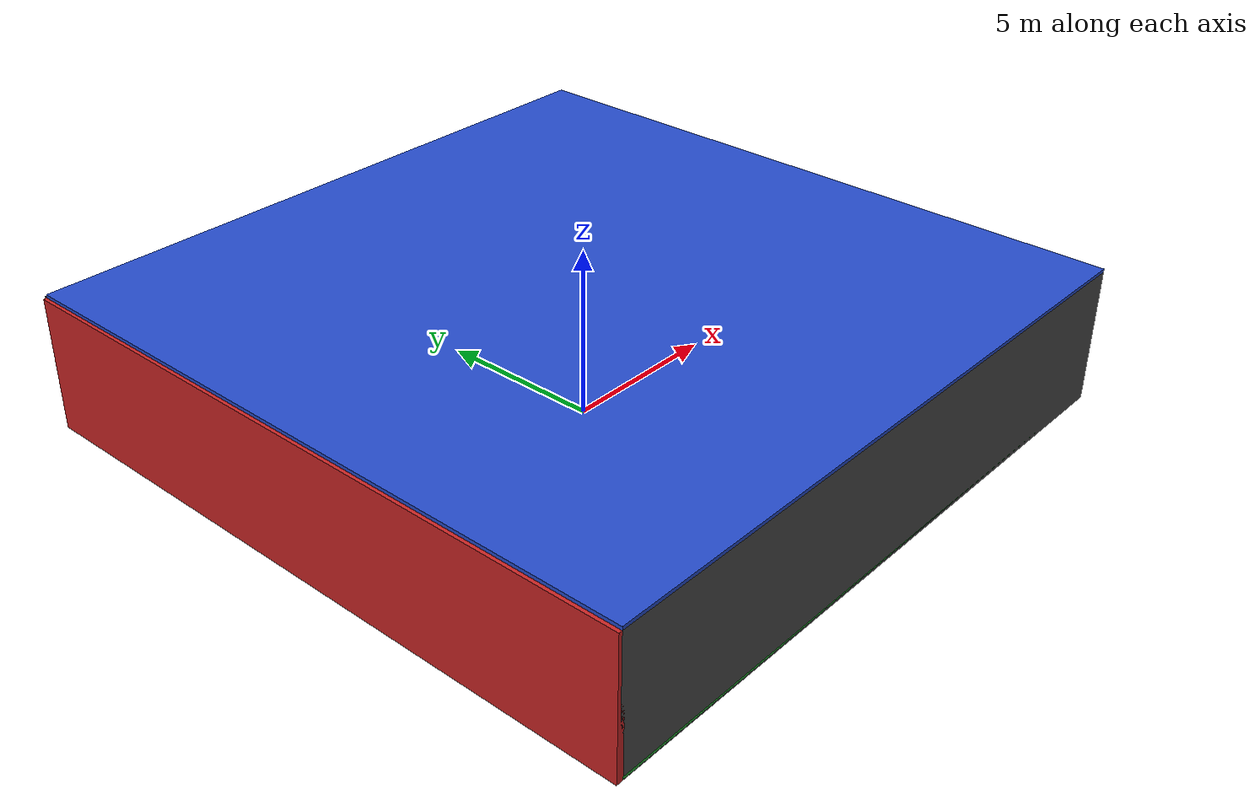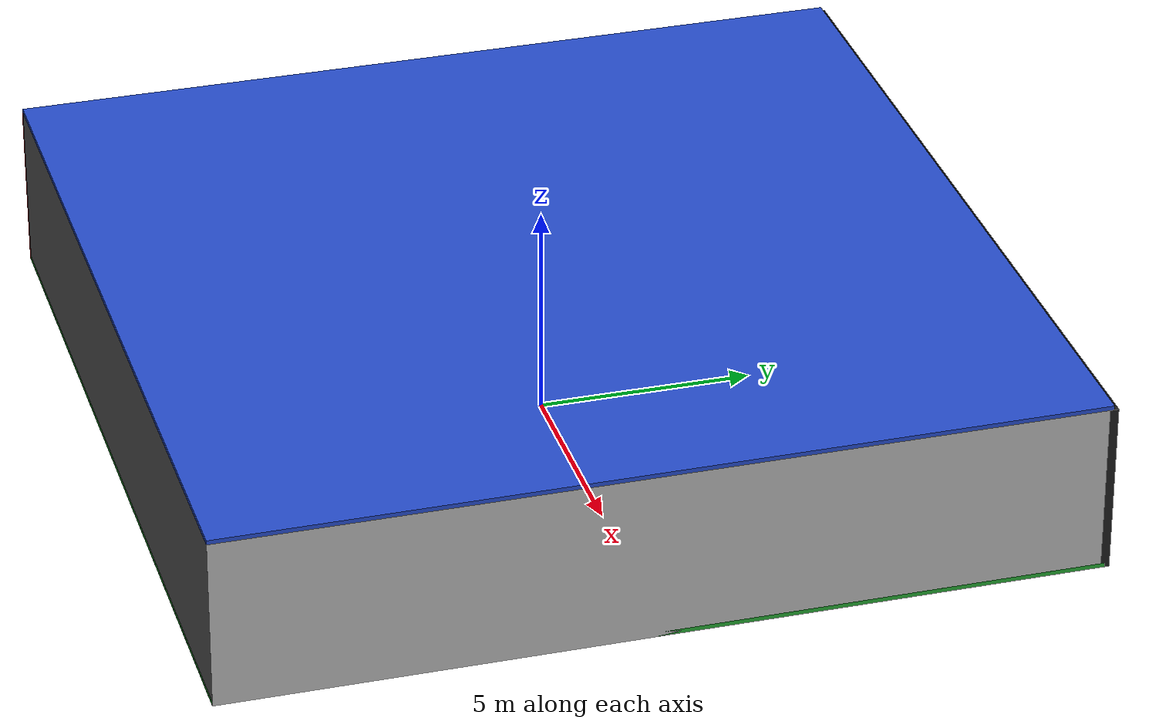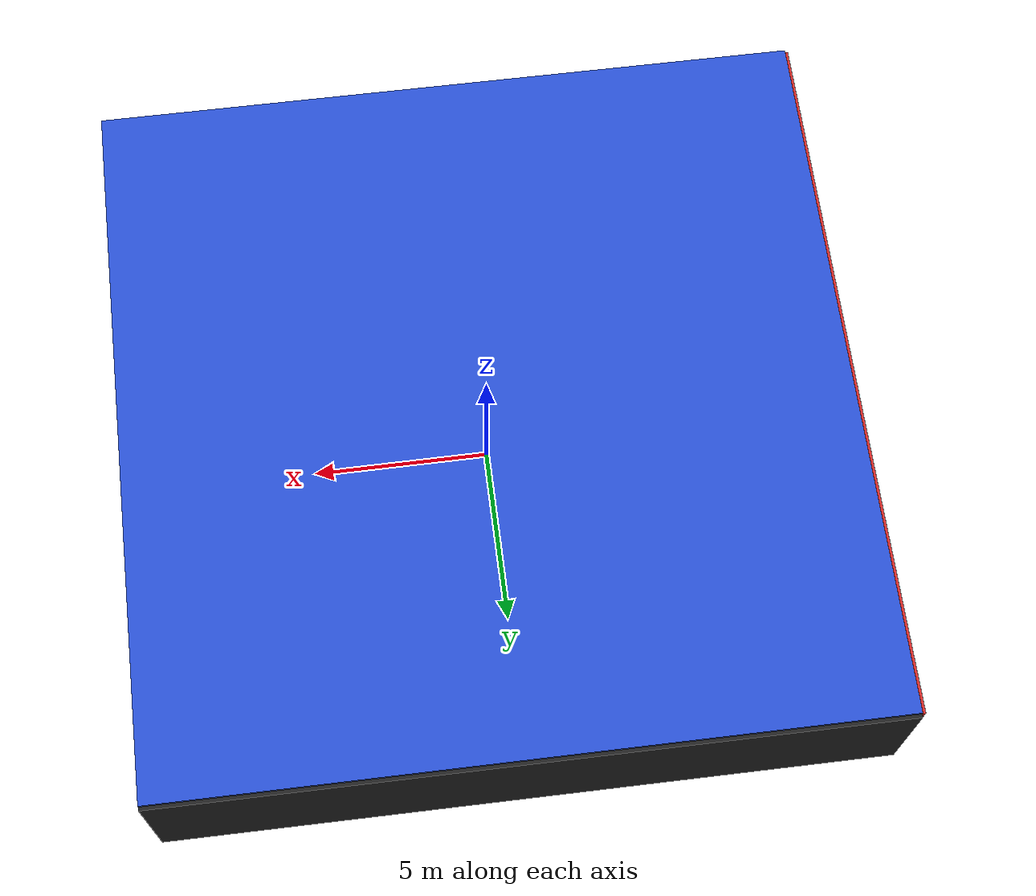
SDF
<sdf version="1.4">
 <world name="default">
  <physics type="ode">
   <max_step_size>0.001</max_step_size>
   <real_time_factor>1</real_time_factor>
   <real_time_update_rate>1000</real_time_update_rate>
   <gravity>0 0 -9.8</gravity>
  </physics>
  <scene><ambient>0.4 0.4 0.4 1</ambient><background>0.7 0.7 0.7 1</background><shadows>1</shadows></scene>
  <model name="Surrounding">
   <static>1</static>
   <link name="Ceiling">
    <collision name="Ceiling_Collision"><geometry><box><size>20 20 0.1</size></box></geometry></collision>
    <visual name="Ceiling_Visual">
     <geometry><box><size>20 20 0.1</size></box></geometry>
     <material>
      <script><uri>file://media/materials/scripts/gazebo.material</uri><name>Gazebo/Blue</name></script>
     </material>
    </visual>
    <pose>0 0 4.05 0 0 0</pose>
   </link>
   <link name="Wall_South">
    <collision name="Wall_South_Collision">
     <geometry><box><size>20 0 4</size></box></geometry>
     <pose>0 0 2 0 -0 0</pose>
    </collision>
    <visual name="Wall_South_Visual">
     <pose>0 0 2 0 -0 0</pose>
     <geometry><box><size>20 0 4</size></box></geometry>
     <material>
      <script><uri>file://media/materials/scripts/gazebo.material</uri><name>Gazebo/DarkGrey</name></script>
     </material>
    </visual>
    <velocity_decay><linear>0</linear><angular>0</angular></velocity_decay>
    <pose>0 -10 0 0 -0 0</pose>
   </link>
   <link name="Wall_East">
    <collision name="Wall_21_Collision">
     <geometry><box><size>20 0 4</size></box></geometry>
     <pose>0 0 2 0 -0 0</pose>
    </collision>
    <visual name="Wall_21_Visual">
     <pose>0 0 2 0 -0 0</pose>
     <geometry><box><size>20 0 4</size></box></geometry>
     <material>
      <script><uri>file://media/materials/scripts/gazebo.material</uri><name>Gazebo/LightOn</name></script>
     </material>
    </visual>
    <velocity_decay><linear>0</linear><angular>0</angular></velocity_decay>
    <pose>10 0 0 0 -0 1.5708</pose>
   </link>
   <link name="Wall_North">
    <collision name="Wall_22_Collision">
     <geometry><box><size>20 0.2 4</size></box></geometry>
     <pose>0 0 2 0 -0 0</pose>
    </collision>
    <visual name="Wall_22_Visual">
     <pose>0 0 2 0 -0 0</pose>
     <geometry><box><size>20 0.2 4</size></box></geometry>
     <material>
      <script><uri>file://media/materials/scripts/gazebo.material</uri><name>Gazebo/FlatBlack</name></script>
     </material>
    </visual>
    <velocity_decay><linear>0</linear><angular>0</angular></velocity_decay>
    <pose>0 10 0 0 -0 0</pose>
   </link>
   <link name="Wall_West">
    <collision name="Wall_23_Collision">
     <geometry><box><size>20 0.2 4</size></box></geometry>
     <pose>0 0 2 0 -0 0</pose>
    </collision>
    <visual name="Wall_23_Visual">
     <pose>0 0 2 0 -0 0</pose>
     <geometry><box><size>20 0.2 4</size></box></geometry>
     <material>
      <script><uri>file://media/materials/scripts/gazebo.material</uri><name>Gazebo/Red</name></script>
     </material>
    </visual>
    <velocity_decay><linear>0</linear><angular>0</angular></velocity_decay>
    <pose>-10 0 0 0 0 -1.5708</pose>
   </link>
   <link name="Ground_link">
    <collision name="collision">
     <pose>0 0 .05 0 -0 0</pose>
     <geometry><box><size>20 20 0.1</size></box></geometry>
    </collision>
    <visual name="visual">
     <pose>0 0 .05 0 -0 0</pose>
     <geometry><box><size>20 20 0.1</size></box></geometry>
     <material>
      <script><uri>file://media/materials/scripts/gazebo.material</uri><name>Gazebo/Green</name></script>
     </material>
    </visual>
   </link>
   <static>1</static>
  </model>
  <spherical_coordinates>
   <surface_model>EARTH_WGS84</surface_model>
   <latitude_deg>0</latitude_deg>
   <longitude_deg>0</longitude_deg>
   <elevation>0</elevation>
   <heading_deg>0</heading_deg>
  </spherical_coordinates>
  <light name="lightball_0" type="diffuse">
   <diffuse>0.8 0.8 0.8 1</diffuse>
   <specular>0.2 0.2 0.2 1</specular>
   <attenuation>
    <range>100</range>
    <constant>0.7</constant>
    <linear>0.01</linear>
    <quadratic>0.001</quadratic>
   </attenuation>
   <direction>-0.5 0.1 -0.9</direction>
   <pose>-4.4680828211 7.87135764313 1.78271427641 0 0 0</pose>
  </light>
  <light name="lightball_1" type="diffuse">
   <diffuse>0.8 0.8 0.8 1</diffuse>
   <specular>0.2 0.2 0.2 1</specular>
   <attenuation>
    <range>100</range>
    <constant>0.7</constant>
    <linear>0.01</linear>
    <quadratic>0.001</quadratic>
   </attenuation>
   <direction>-0.5 0.1 -0.9</direction>
   <pose>3.64632678086 5.13365141142 0.923626985556 0 0 0</pose>
  </light>
  <light name="lightball_2" type="diffuse">
   <diffuse>0.8 0.8 0.8 1</diffuse>
   <specular>0.2 0.2 0.2 1</specular>
   <attenuation>
    <range>100</range>
    <constant>0.7</constant>
    <linear>0.01</linear>
    <quadratic>0.001</quadratic>
   </attenuation>
   <direction>-0.5 0.1 -0.9</direction>
   <pose>2.82980833105 -9.14732731995 3.83580202835 0 0 0</pose>
  </light>
  <light name="lightball_3" type="diffuse">
   <diffuse>0.8 0.8 0.8 1</diffuse>
   <specular>0.2 0.2 0.2 1</specular>
   <attenuation>
    <range>100</range>
    <constant>0.7</constant>
    <linear>0.01</linear>
    <quadratic>0.001</quadratic>
   </attenuation>
   <direction>-0.5 0.1 -0.9</direction>
   <pose>-0.160206098135 -1.93131223597 0.639986776608 0 0 0</pose>
  </light>
  <light name="lightball_4" type="diffuse">
   <diffuse>0.8 0.8 0.8 1</diffuse>
   <specular>0.2 0.2 0.2 1</specular>
   <attenuation>
    <range>100</range>
    <constant>0.7</constant>
    <linear>0.01</linear>
    <quadratic>0.001</quadratic>
   </attenuation>
   <direction>-0.5 0.1 -0.9</direction>
   <pose>-2.27067540497 8.77884684518 3.10170796904 0 0 0</pose>
  </light>
  <light name="lightball_5" type="diffuse">
   <diffuse>0.8 0.8 0.8 1</diffuse>
   <specular>0.2 0.2 0.2 1</specular>
   <attenuation>
    <range>100</range>
    <constant>0.7</constant>
    <linear>0.01</linear>
    <quadratic>0.001</quadratic>
   </attenuation>
   <direction>-0.5 0.1 -0.9</direction>
   <pose>9.78727324468 -6.07130532394 3.48511506917 0 0 0</pose>
  </light>
  <light name="lightball_6" type="diffuse">
   <diffuse>0.8 0.8 0.8 1</diffuse>
   <specular>0.2 0.2 0.2 1</specular>
   <attenuation>
    <range>100</range>
    <constant>0.7</constant>
    <linear>0.01</linear>
    <quadratic>0.001</quadratic>
   </attenuation>
   <direction>-0.5 0.1 -0.9</direction>
   <pose>-4.54438510313 5.71946236219 0.846755543928 0 0 0</pose>
  </light>
  <light name="lightball_7" type="diffuse">
   <diffuse>0.8 0.8 0.8 1</diffuse>
   <specular>0.2 0.2 0.2 1</specular>
   <attenuation>
    <range>100</range>
    <constant>0.7</constant>
    <linear>0.01</linear>
    <quadratic>0.001</quadratic>
   </attenuation>
   <direction>-0.5 0.1 -0.9</direction>
   <pose>-8.15791748874 7.80518347218 3.63428832734 0 0 0</pose>
  </light>
  <light name="lightball_8" type="diffuse">
   <diffuse>0.8 0.8 0.8 1</diffuse>
   <specular>0.2 0.2 0.2 1</specular>
   <attenuation>
    <range>100</range>
    <constant>0.7</constant>
    <linear>0.01</linear>
    <quadratic>0.001</quadratic>
   </attenuation>
   <direction>-0.5 0.1 -0.9</direction>
   <pose>0.963068125501 3.54360270393 1.15646596536 0 0 0</pose>
  </light>
  <include>
   <uri>model://construction_cone</uri>
   <pose>-5.48684005274 -8.56441793999 0 0 0 3.08167809707</pose>
  </include>
  <include>
   <uri>model://textured_shapes</uri>
   <pose>-5.54374745474 -1.12337713724 0 0 0 0.952373289086</pose>
  </include>
  <include>
   <uri>model://textured_shapes</uri>
   <pose>3.93389558531 4.18308349568 0 0 0 1.91850216925</pose>
  </include>
  <include><uri>model://cabinet</uri><pose>3.85994828323 6.51619055688 0 0 0 0.620905915005</pose></include>
 </world>
</sdf>

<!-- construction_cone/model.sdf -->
<sdf version="1.5">
  <model name="Construction Cone">
    <link name="link">
      <collision name="collision">
        <geometry>
          <mesh>
            <scale>10 10 10</scale>
            <uri>file://isr-testbed/construction_cone/meshes/construction_cone.dae</uri>
          </mesh>
        </geometry>
      </collision>
      <visual name="visual">
        <geometry>
          <mesh>
            <scale>10 10 10</scale>
            <uri>file://isr-testbed/construction_cone/meshes/construction_cone.dae</uri>
          </mesh>
        </geometry>
      </visual>
    </link>
  </model>
</sdf>

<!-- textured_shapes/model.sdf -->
<sdf version="1.6">
  <model name="textured_shapes">
    <pose>0 0 0.5 0 0 0</pose>
    <link name="box">
      <pose>0 -1.5 0 0 0 0</pose>
      <collision name="collision">
        <geometry>
          <box>
            <size>1 1 1</size>
          </box>
        </geometry>
      </collision>
      <visual name="visual">
        <geometry>
          <box>
            <size>1 1 1</size>
          </box>
        </geometry>
        <material>
          <script>
            <uri>model://../model_source/models/textured_shapes/materials/scripts</uri>
            <uri>model://../model_source/models/textured_shapes/materials/textures</uri>
            <name>TexturedShape/Squares</name>
          </script>
        </material>
      </visual>
    </link>
    <link name="sphere">
      <collision name="collision">
        <geometry>
          <sphere>
            <radius>0.5</radius>
          </sphere>
        </geometry>
      </collision>
      <visual name="visual">
        <geometry>
          <sphere>
            <radius>0.5</radius>
          </sphere>
        </geometry>
        <material>
          <script>
            <uri>model://../model_source/models/textured_shapes/materials/scripts</uri>
            <uri>model://../model_source/models/textured_shapes/materials/textures</uri>
            <name>TexturedShape/Squares</name>
          </script>
        </material>
      </visual>
    </link>
    <link name="cylinder">
      <pose>0 1.5 0 0 0 0</pose>
      <collision name="collision">
        <geometry>
          <cylinder>
            <radius>0.5</radius>
            <length>1</length>
          </cylinder>
        </geometry>
      </collision>
      <visual name="visual">
        <geometry>
          <cylinder>
            <radius>0.5</radius>
            <length>1</length>
          </cylinder>
        </geometry>
        <material>
          <script>
            <uri>model://../model_source/models/textured_shapes/materials/scripts</uri>
            <uri>model://../model_source/models/textured_shapes/materials/textures</uri>
            <name>TexturedShape/Squares</name>
          </script>
        </material>
      </visual>
    </link>
  </model>
</sdf>

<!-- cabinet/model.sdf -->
<sdf version="1.5">
  <model name="cabinet">
    <static>true</static>
    <link name="cabinet_bottom_plate">
      <inertial>
        <pose>0 0 -1 0 0 0</pose>
        <inertia>
          <ixx>2.050000</ixx>
          <ixy>0</ixy>
          <ixz>0</ixz>
          <iyy>2.050000</iyy>
          <iyz>0</iyz>
          <izz>2.050000</izz>
        </inertia>
        <mass>25.000000</mass>
      </inertial>
      <collision name="cabinet_bottom_plate_geom">
        <pose>0 0 0.010000 0 0 0</pose>
        <geometry>
          <box>
            <size>0.450000 0.450000 0.020000</size>
          </box>
        </geometry>
      </collision>
      <visual name="cabinet_bottom_plate_geom_visual">
        <pose>0 0 0.010000 0 0 0</pose>
        <geometry>
          <box>
            <size>0.450000 0.450000 0.020000</size>
          </box>
        </geometry>
        <material>
          <script>
            <uri>model://media/materials/scripts/gazebo.material</uri>
            <name>Gazebo/Wood</name>
          </script>
        </material>
      </visual>
      <collision name="cabinet_bottom_plate_geom_cabinet_back_plate">
        <pose>0.235000 0 0.510000 0 0 0</pose>
        <geometry>
          <box>
            <size>0.020000 0.450000 1.020000</size>
          </box>
        </geometry>
      </collision>
      <visual name="cabinet_bottom_plate_geom_cabinet_back_plate_visual">
        <pose>0.235000 0 0.510000 0 0 0</pose>
        <geometry>
          <box>
            <size>0.020000 0.450000 1.020000</size>
          </box>
        </geometry>
        <material>
          <script>
            <uri>model://media/materials/scripts/gazebo.material</uri>
            <name>Gazebo/Wood</name>
          </script>
        </material>
      </visual>
      <collision name="cabinet_bottom_plate_geom_cabinet_left_plate">
        <pose>0 0.235000 0.510000 0 0 0</pose>
        <geometry>
          <box>
            <size>0.450000 0.020000 1.020000</size>
          </box>
        </geometry>
      </collision>
      <visual name="cabinet_bottom_plate_geom_cabinet_left_plate_visual">
        <pose>0 0.235000 0.510000 0 0 0</pose>
        <geometry>
          <box>
            <size>0.450000 0.020000 1.020000</size>
          </box>
        </geometry>
        <material>
          <script>
            <uri>model://media/materials/scripts/gazebo.material</uri>
            <name>Gazebo/Wood</name>
          </script>
        </material>
      </visual>
      <collision name="cabinet_bottom_plate_geom_cabinet_middle_plate">
        <pose>0 0 0.510000 0 0 0</pose>
        <geometry>
          <box>
            <size>0.450000 0.450000 0.020000</size>
          </box>
        </geometry>
      </collision>
      <visual name="cabinet_bottom_plate_geom_cabinet_middle_plate_visual">
        <pose>0 0 0.510000 0 0 0</pose>
        <geometry>
          <box>
            <size>0.450000 0.450000 0.020000</size>
          </box>
        </geometry>
        <material>
          <script>
            <uri>model://media/materials/scripts/gazebo.material</uri>
            <name>Gazebo/Wood</name>
          </script>
        </material>
      </visual>
      <collision name="cabinet_bottom_plate_geom_cabinet_right_plate">
        <pose>0 -0.235000 0.510000 0 0 0</pose>
        <geometry>
          <box>
            <size>0.450000 0.020000 1.020000</size>
          </box>
        </geometry>
      </collision>
      <visual name="cabinet_bottom_plate_geom_cabinet_right_plate_visual">
        <pose>0 -0.235000 0.510000 0 0 0</pose>
        <geometry>
          <box>
            <size>0.450000 0.020000 1.020000</size>
          </box>
        </geometry>
        <material>
          <script>
            <uri>model://media/materials/scripts/gazebo.material</uri>
            <name>Gazebo/Wood</name>
          </script>
        </material>
      </visual>
      <collision name="cabinet_bottom_plate_geom_cabinet_top_plate">
        <pose>0 0 1.010000 0 0 0</pose>
        <geometry>
          <box>
            <size>0.450000 0.450000 0.020000</size>
          </box>
        </geometry>
      </collision>
      <visual name="cabinet_bottom_plate_geom_cabinet_top_plate_visual">
        <pose>0 0 1.010000 0 0 0</pose>
        <geometry>
          <box>
            <size>0.450000 0.450000 0.020000</size>
          </box>
        </geometry>
        <material>
          <script>
            <uri>model://media/materials/scripts/gazebo.material</uri>
            <name>Gazebo/Wood</name>
          </script>
        </material>
      </visual>
    </link>
  </model>
</sdf>
